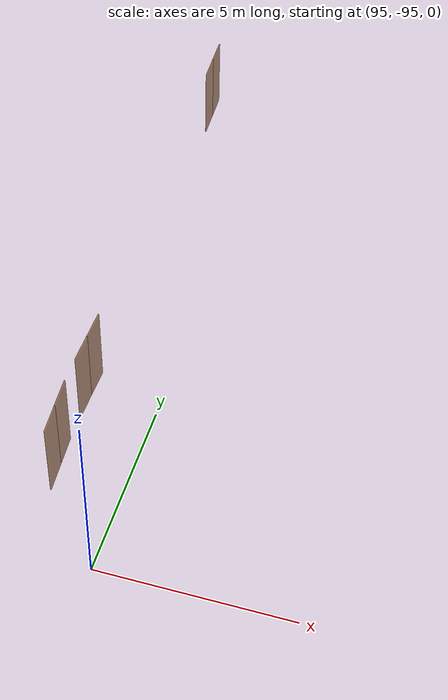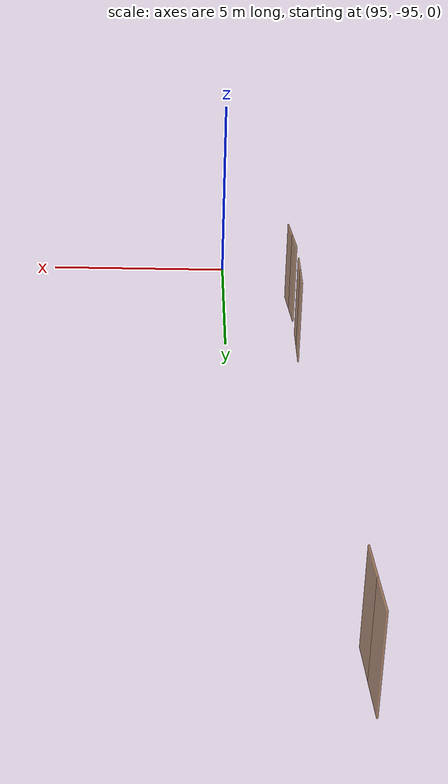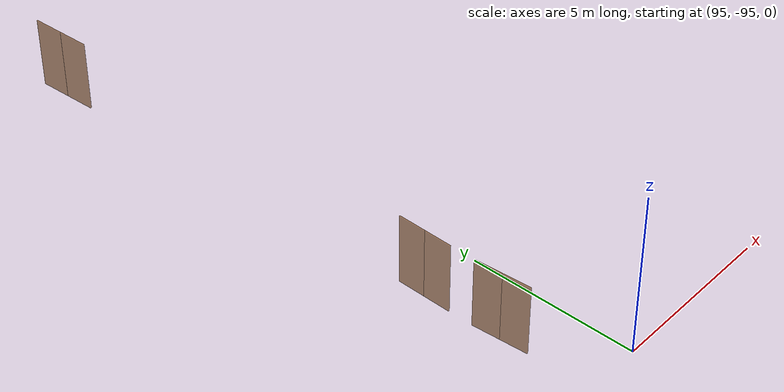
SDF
<sdf version="1.7">
 <world name="sim_world">
  <model name="puerta4">
   <pose>93.19853668182714 -92.25728819121585 0.0 0 0 -1.5014207532018002</pose>
   <link name="right">
    <pose>0.4189454201943615 0 1.11 0 0 0</pose>
    <visual name="right_visual">
     <geometry><box><size>0.827890840388723 0.03 2.2</size></box></geometry>
     <material>
      <ambient>0.5 0.25 0 0.6</ambient>
      <diffuse>0.5 0.25 0 0.6</diffuse>
      <pbr><metal><metalness>0.0</metalness></metal></pbr>
     </material>
    </visual>
    <collision name="right_collision">
     <geometry><box><size>0.827890840388723 0.03 2.2</size></box></geometry>
     <surface><contact><collide_bitmask>0x02</collide_bitmask></contact></surface>
    </collision>
    <inertial>
     <mass>50.0</mass>
     <inertia><ixx>20.17041666666667</ixx><iyy>23.022513514998113</iyy><izz>2.859596848331442</izz></inertia>
    </inertial>
   </link>
   <joint name="right_joint" type="revolute">
    <parent>world</parent>
    <child>right</child>
    <axis><xyz>0 0 1</xyz><limit><lower>0</lower><upper>1.57</upper></limit></axis>
    <pose>0.4189454201943615 0 0 0 0 0</pose>
   </joint>
   <link name="left">
    <pose>-0.4189454201943615 0 1.11 0 0 0</pose>
    <visual name="left_visual">
     <geometry><box><size>0.827890840388723 0.03 2.2</size></box></geometry>
     <material>
      <ambient>0.5 0.25 0 0.6</ambient>
      <diffuse>0.5 0.25 0 0.6</diffuse>
      <pbr><metal><metalness>0.0</metalness></metal></pbr>
     </material>
    </visual>
    <collision name="left_collision">
     <geometry><box><size>0.827890840388723 0.03 2.2</size></box></geometry>
     <surface><contact><collide_bitmask>0x02</collide_bitmask></contact></surface>
    </collision>
    <inertial>
     <mass>50.0</mass>
     <inertia><ixx>20.17041666666667</ixx><iyy>23.022513514998113</iyy><izz>2.859596848331442</izz></inertia>
    </inertial>
   </link>
   <joint name="left_joint" type="revolute">
    <parent>world</parent>
    <child>left</child>
    <axis><xyz>0 0 1</xyz><limit><lower>-1.57</lower><upper>0</upper></limit></axis>
    <pose>-0.4189454201943615 0 0 0 0 0</pose>
   </joint>
   <plugin name="register_component" filename="libregister_component.so">
    <component name="Door">
     <v_max_door>0.5</v_max_door>
     <a_max_door>0.3</a_max_door>
     <a_nom_door>0.15</a_nom_door>
     <dx_min_door>0.01</dx_min_door>
     <f_max_door>500.0</f_max_door>
     <ros_interface>true</ros_interface>
     <door name="puerta4" type="DoubleSwingDoor" left_joint_name="left_joint" right_joint_name="right_joint"/>
    </component>
   </plugin>
  </model>
  <model name="puerta3">
   <pose>93.15189814834291 -89.85387855048191 0.0 0 0 -1.584496859800948</pose>
   <link name="right">
    <pose>0.4176612847924012 0 1.11 0 0 0</pose>
    <visual name="right_visual">
     <geometry><box><size>0.8253225695848024 0.03 2.2</size></box></geometry>
     <material>
      <ambient>0.5 0.25 0 0.6</ambient>
      <diffuse>0.5 0.25 0 0.6</diffuse>
      <pbr><metal><metalness>0.0</metalness></metal></pbr>
     </material>
    </visual>
    <collision name="right_collision">
     <geometry><box><size>0.8253225695848024 0.03 2.2</size></box></geometry>
     <surface><contact><collide_bitmask>0x02</collide_bitmask></contact></surface>
    </collision>
    <inertial>
     <mass>50.0</mass>
     <inertia><ixx>20.17041666666667</ixx><iyy>23.00482226610859</iyy><izz>2.8419055994419216</izz></inertia>
    </inertial>
   </link>
   <joint name="right_joint" type="revolute">
    <parent>world</parent>
    <child>right</child>
    <axis><xyz>0 0 1</xyz><limit><lower>0</lower><upper>1.57</upper></limit></axis>
    <pose>0.4176612847924012 0 0 0 0 0</pose>
   </joint>
   <link name="left">
    <pose>-0.4176612847924012 0 1.11 0 0 0</pose>
    <visual name="left_visual">
     <geometry><box><size>0.8253225695848024 0.03 2.2</size></box></geometry>
     <material>
      <ambient>0.5 0.25 0 0.6</ambient>
      <diffuse>0.5 0.25 0 0.6</diffuse>
      <pbr><metal><metalness>0.0</metalness></metal></pbr>
     </material>
    </visual>
    <collision name="left_collision">
     <geometry><box><size>0.8253225695848024 0.03 2.2</size></box></geometry>
     <surface><contact><collide_bitmask>0x02</collide_bitmask></contact></surface>
    </collision>
    <inertial>
     <mass>50.0</mass>
     <inertia><ixx>20.17041666666667</ixx><iyy>23.00482226610859</iyy><izz>2.8419055994419216</izz></inertia>
    </inertial>
   </link>
   <joint name="left_joint" type="revolute">
    <parent>world</parent>
    <child>left</child>
    <axis><xyz>0 0 1</xyz><limit><lower>-1.57</lower><upper>0</upper></limit></axis>
    <pose>-0.4176612847924012 0 0 0 0 0</pose>
   </joint>
   <plugin name="register_component" filename="libregister_component.so">
    <component name="Door">
     <v_max_door>0.5</v_max_door>
     <a_max_door>0.3</a_max_door>
     <a_nom_door>0.15</a_nom_door>
     <dx_min_door>0.01</dx_min_door>
     <f_max_door>500.0</f_max_door>
     <ros_interface>true</ros_interface>
     <door name="puerta3" type="DoubleSwingDoor" left_joint_name="left_joint" right_joint_name="right_joint"/>
    </component>
   </plugin>
  </model>
  <model name="puerta117">
   <pose>92.79067565918736 -77.04151397473059 0.0 0 0 1.6162153879774417</pose>
   <link name="right">
    <pose>0.4529050185974046 0 1.11 0 0 0</pose>
    <visual name="right_visual">
     <geometry><box><size>0.8958100371948092 0.03 2.2</size></box></geometry>
     <material>
      <ambient>0.5 0.25 0 0.6</ambient>
      <diffuse>0.5 0.25 0 0.6</diffuse>
      <pbr><metal><metalness>0.0</metalness></metal></pbr>
     </material>
    </visual>
    <collision name="right_collision">
     <geometry><box><size>0.8958100371948092 0.03 2.2</size></box></geometry>
     <surface><contact><collide_bitmask>0x02</collide_bitmask></contact></surface>
    </collision>
    <inertial>
     <mass>50.0</mass>
     <inertia><ixx>20.17041666666667</ixx><iyy>23.510315094745696</iyy><izz>3.347398428079023</izz></inertia>
    </inertial>
   </link>
   <joint name="right_joint" type="revolute">
    <parent>world</parent>
    <child>right</child>
    <axis><xyz>0 0 1</xyz><limit><lower>0</lower><upper>1.57</upper></limit></axis>
    <pose>0.4529050185974046 0 0 0 0 0</pose>
   </joint>
   <link name="left">
    <pose>-0.4529050185974046 0 1.11 0 0 0</pose>
    <visual name="left_visual">
     <geometry><box><size>0.8958100371948092 0.03 2.2</size></box></geometry>
     <material>
      <ambient>0.5 0.25 0 0.6</ambient>
      <diffuse>0.5 0.25 0 0.6</diffuse>
      <pbr><metal><metalness>0.0</metalness></metal></pbr>
     </material>
    </visual>
    <collision name="left_collision">
     <geometry><box><size>0.8958100371948092 0.03 2.2</size></box></geometry>
     <surface><contact><collide_bitmask>0x02</collide_bitmask></contact></surface>
    </collision>
    <inertial>
     <mass>50.0</mass>
     <inertia><ixx>20.17041666666667</ixx><iyy>23.510315094745696</iyy><izz>3.347398428079023</izz></inertia>
    </inertial>
   </link>
   <joint name="left_joint" type="revolute">
    <parent>world</parent>
    <child>left</child>
    <axis><xyz>0 0 1</xyz><limit><lower>-1.57</lower><upper>0</upper></limit></axis>
    <pose>-0.4529050185974046 0 0 0 0 0</pose>
   </joint>
   <plugin name="register_component" filename="libregister_component.so">
    <component name="Door">
     <v_max_door>0.5</v_max_door>
     <a_max_door>0.3</a_max_door>
     <a_nom_door>0.15</a_nom_door>
     <dx_min_door>0.01</dx_min_door>
     <f_max_door>500.0</f_max_door>
     <ros_interface>true</ros_interface>
     <door name="puerta117" type="DoubleSwingDoor" left_joint_name="left_joint" right_joint_name="right_joint"/>
    </component>
   </plugin>
  </model>
 </world>
</sdf>
